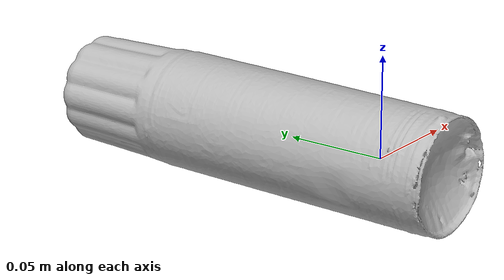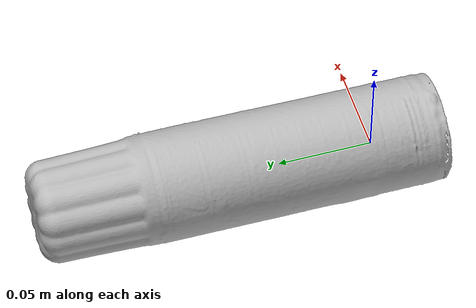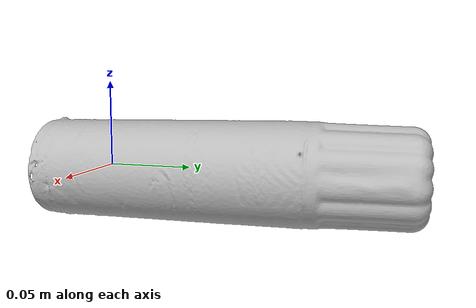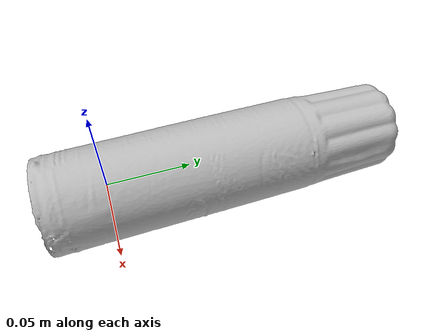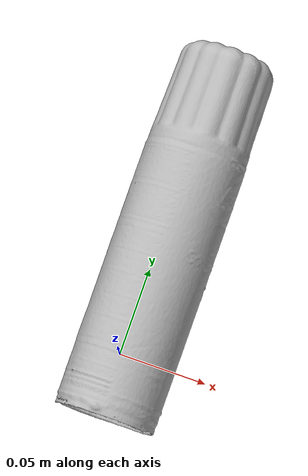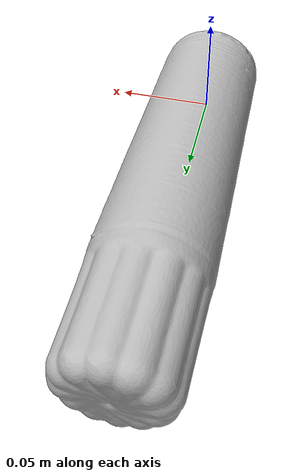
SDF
<?xml version='1.0'?>
<sdf version="1.4">
  <model name="WhippedCream">
    <static>false</static>
    <link name="link">
      <inertial>
        <pose>0.003286376598352091 0.06928322198793337 -0.0009390282743420685 1.552197510622499 1.0172719525475882 3.1290578327985688</pose>
        <mass>0.05668368822553335</mass>
        <inertia>
          <ixx>0.00022642411675227403</ixx>
          <ixy>1.0075046896460913e-19</ixy>
          <ixz>2.5168913071323434e-21</ixz>
          <iyy>0.00022635271375574968</iyy>
          <iyz>-7.792178009207934e-21</iyz>
          <izz>2.362140022286727e-05</izz>
        </inertia>
      </inertial>
      <collision name="collision">
        <geometry>
          <mesh>
            <!-- Use a downsampled mesh for collisions -->
            <uri>model:///WhippedCream/WhippedCream_250_collision.obj</uri>
	        </mesh>
        </geometry>
        <surface>
      </surface>
      </collision>
      <visual name="visual">
        <geometry>
          <mesh>
            <uri>model:///WhippedCream/WhippedCream_25k_tex.obj</uri>
	        </mesh>
        </geometry>
        <material>
          <script>
            <uri>model:///WhippedCream/WhippedCream.material</uri>
            <name>WhippedCream</name>
          </script>
        </material>
      </visual>
    </link>
  </model>
</sdf>
